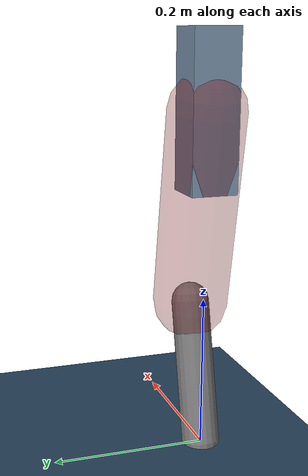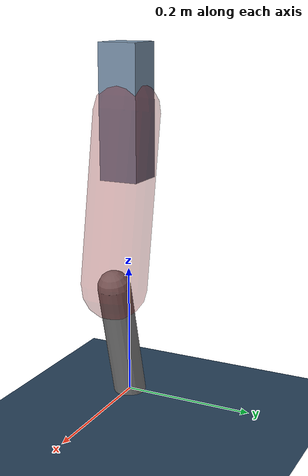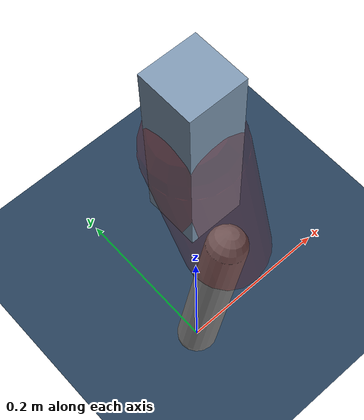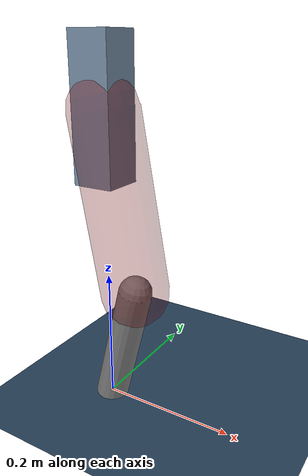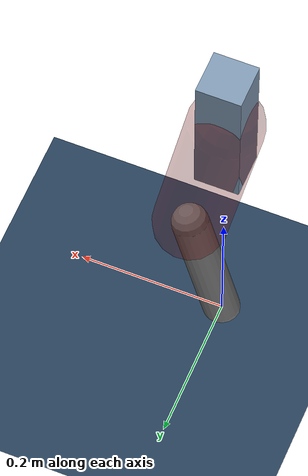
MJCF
<mujoco model="Hopper2D">
	<compiler inertiafromgeom="true" angle="radian" />
	<option timestep="0.001" integrator="implicit" cone="elliptic" solver="Newton" tolerance="1e-10" />

	<default>
		<geom contype="1" conaffinity="1" condim="3" friction="2 0.005 0.0001" solref="0.005 1" />
		<joint limited="true" damping="0.1" />
	</default>

	<asset>
		<texture name="skybox" type="skybox" builtin="gradient" rgb1=".4 .6 .8" rgb2="0 0 0" width="800" height="800" />
		<texture name="grid" type="2d" builtin="checker" rgb1=".1 .2 .3" rgb2=".2 .3 .4" width="300" height="300" mark="edge" markrgb=".2 .3 .4" />
		<material name="ground" texture="grid" texrepeat="1 1" texuniform="true" reflectance="0.1" />
		<material name="leg" rgba="0.5 0.6 0.7 1" />
	</asset>

	<worldbody>

		<geom name="floor" type="plane" size="5 5 0.25" material="ground" />

		<light directional="false" diffuse="0.8 0.8 0.8" specular="0.3 0.3 0.3" pos="0 0 2" dir="0 0 -1" />
		<light mode="targetbodycom" target="base" directional="false" diffuse="0.8 0.8 0.8" specular="0.3 0.3 0.3" pos="0 0 2" dir="0 0 -1" />

		<camera name="fixed" pos="0 -2 1" xyaxes="1 0 0 0 0 1" />
		<camera name="tracking" mode="trackcom" pos="0 -3 1" />

		<body name="root" pos="0 0 0.4404892569768072">
			<joint name="slide_x" type="slide" axis="1 0 0" range="-100 100" />
			<joint name="slide_z" type="slide" axis="0 0 1" range="0 10" />

			<body name="base" pos="0 0 0">
				<geom name="torso" type="box" size="0.03 0.03 0.1" mass="2.2039999999999997" material="leg" />

				<body name="link1" pos="0 0 0" euler="0 1.390560592184975 0">
					<joint type="hinge" axis="0 -1 0" pos="0 0 0" name="hinge1" limited="true" range="-3.14 3.14" stiffness="0" damping="0.1" />
					<geom name="thigh" type="capsule" fromto="0 0 0 0.2599836160549528 0 0" size="0.05" rgba="0.5 0 0 0.3" mass="0.8823574017428772" />

					<body name="link2" pos="0.2599836160549528 0 0" euler="0 0.4273827829565743 0">
						<joint type="hinge" axis="0 -1 0" pos="0 0 0" name="hinge2" limited="true" range="-3.14 3.14" stiffness="0" damping="0.1" />
						<geom name="shank" type="capsule" fromto="0 0 0 0.1905056409218544 0 0" size="0.025" mass="0.39285507682966897" />

					</body>
				</body>
			</body>
		</body>
	</worldbody>

	<actuator>
		<motor name="torque1" joint="hinge1" ctrlrange="-86.01082315987614 86.01082315987614" ctrllimited="true" gear="1" />
		<motor name="torque2" joint="hinge2" ctrlrange="-95.9545876907596 95.9545876907596" ctrllimited="true" gear="1" />
	</actuator>
</mujoco>
